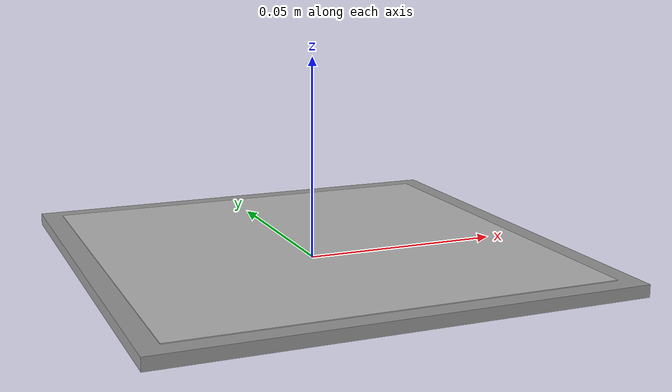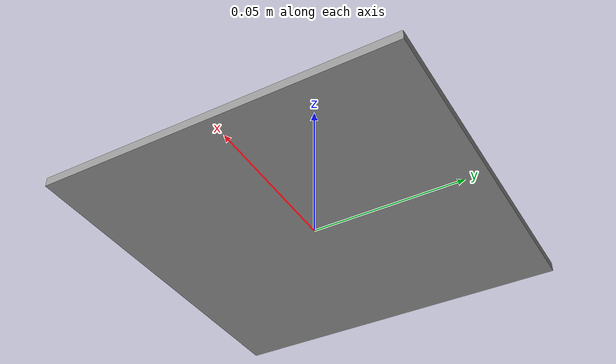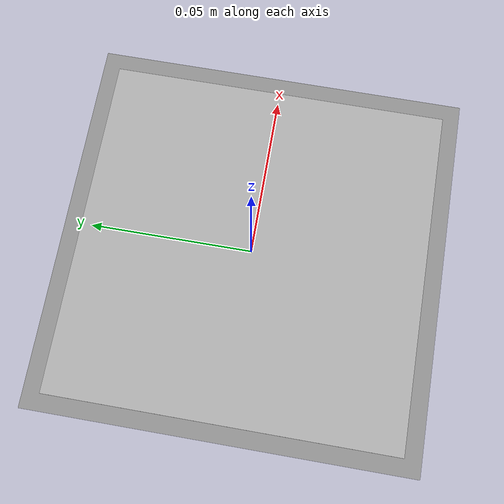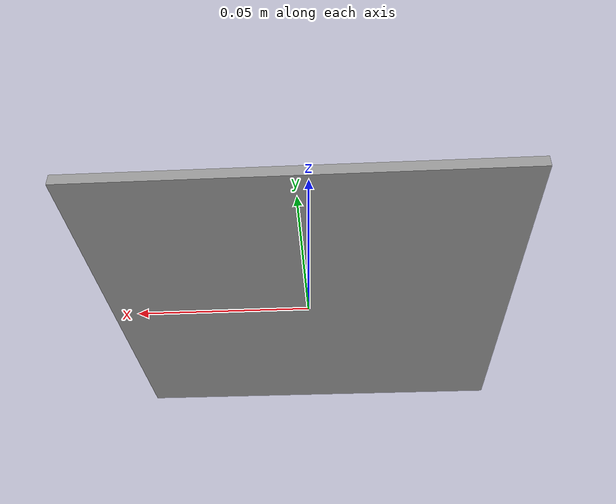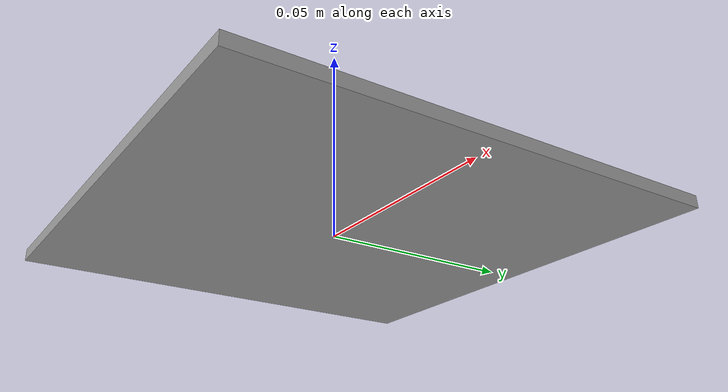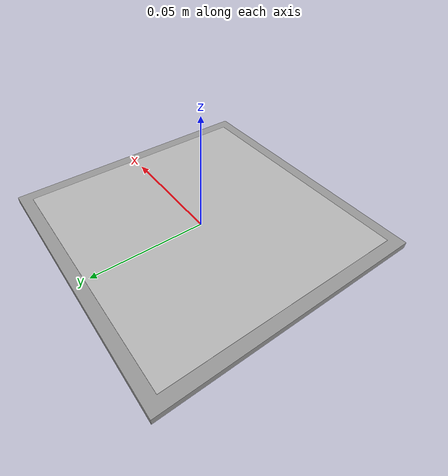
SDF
<?xml version="1.0" ?>
<sdf version="1.6">
  <model name="aruco_marker">
    <static>true</static>
    <link name="link">
      <visual name="marker_face">
        <!-- lift the face just above the backing so it never z-fights -->
        <pose>0 0 0.0031 0 0 0</pose>
        <geometry>
          <box><size>0.105 0.105 0.0002</size></box>
        </geometry>
        <material>
          <script>
            <uri>model://aruco_marker/materials/scripts</uri>
            <uri>model://aruco_marker/materials/textures</uri>
            <name>ArucoMarker/Face</name>
          </script>
        </material>
      </visual>

      <visual name="backing">
        <pose>0 0 0.0015 0 0 0</pose>
        <geometry>
          <box><size>0.115 0.115 0.003</size></box>
        </geometry>
        <material>
          <script>
            <uri>file://media/materials/scripts/gazebo.material</uri>
            <name>Gazebo/Grey</name>
          </script>
        </material>
      </visual>

      <collision name="collision">
        <pose>0 0 0.0015 0 0 0</pose>
        <geometry>
          <box><size>0.115 0.115 0.003</size></box>
        </geometry>
      </collision>
    </link>
  </model>
</sdf>
